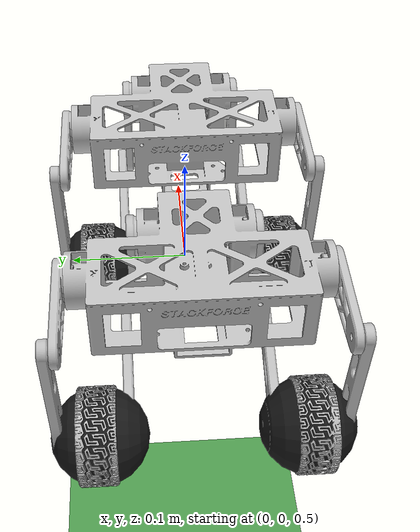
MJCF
<mujoco model="rh1_quadruped">
  <compiler meshdir="meshes/visual" angle="radian"/>
  <option gravity="0 0 -9.81" timestep="0.002"/>
  <default>
    <joint damping="0.1"/>
    <geom contype="1" conaffinity="1" friction="1.0 0.005 0.0001" rgba="0.75 0.75 0.75 1"/>
  </default>

  <asset>
    <mesh name="F_base_link" file="base_link.STL"/>
    <mesh name="R_base_link" file="base_link.STL"/>
    <mesh name="F_Link1" file="Link1.STL"/>
    <mesh name="R_Link1" file="Link1.STL"/>
    <mesh name="F_Link2" file="Link2.STL"/>
    <mesh name="R_Link2" file="Link2.STL"/>
    <mesh name="F_Link4" file="Link4.STL"/>
    <mesh name="R_Link4" file="Link4.STL"/>
    <mesh name="F_Link5" file="Link5.STL"/>
    <mesh name="R_Link5" file="Link5.STL"/>
    <mesh name="F_Link6" file="Link6.STL"/>
    <mesh name="R_Link6" file="Link6.STL"/>
    <mesh name="F_Link7" file="Link7.STL"/>
    <mesh name="R_Link7" file="Link7.STL"/>
    <mesh name="F_Link8" file="Link8.STL"/>
    <mesh name="R_Link8" file="Link8.STL"/>
    <mesh name="F_Link10" file="Link10.STL"/>
    <mesh name="R_Link10" file="Link10.STL"/>
    <mesh name="F_Link11" file="Link11.STL"/>
    <mesh name="R_Link11" file="Link11.STL"/>
    <mesh name="F_Link12" file="Link12.STL"/>
    <mesh name="R_Link12" file="Link12.STL"/>
  </asset>

  <worldbody>
    <light directional="true" pos="0 0 3" dir="0 0 -1"/>
    <geom name="ground" type="plane" size="20 20 0.1" rgba="0.3 0.6 0.3 1"/>

    <body name="F_base_link" pos="0 0 0.5">
      <freejoint name="root"/>
      <!-- 配重：增加正压力使轮子获得足够摩擦力 -->
      <body name="chassis_weight" pos="-0.085 0 0">
        <inertial pos="0 0 0" mass="1.5" fullinertia="0.01 0.01 0.01 0 0 0"/>
      </body>
      <inertial pos="0.01962 0.00042858 0.1275" mass="0.10447" fullinertia="0.00014284 0.00010434 0.00021415 -4.8698e-08 6.5351e-07 -2.1296e-08"/>
      <geom type="mesh" mesh="F_base_link" contype="0" conaffinity="0"/>
      <body name="F_Link1" pos="0.0094733 -0.089437 0.13366" euler="1.5708 0 0">
        <joint name="F_joint1" type="hinge" axis="0 0 1" limited="true" range="-3.14 3.14" damping="0.1"/>
        <inertial pos="-0.018172 7.5943e-07 -0.00024017" mass="0.010538" fullinertia="6.4723e-07 4.7414e-06 5.326e-06 2.2204e-11 -3.9655e-08 -1.4489e-11"/>
        <geom type="mesh" mesh="F_Link1" contype="0" conaffinity="0"/>
        <body name="F_Link2" pos="-0.06 0 0.011076" euler="0 0 0">
          <inertial pos="0.0053781 -0.065346 -0.01087" mass="0.015817" fullinertia="1.6036e-05 1.2182e-06 1.5983e-05 1.2278e-06 -1.264e-08 1.5358e-07"/>
          <geom type="mesh" mesh="F_Link2" contype="0" conaffinity="0"/>
          <body name="F_Link4" pos="0.0082023 -0.099663 -0.028996" euler="0 0 0">
            <joint name="F_joint4" type="hinge" axis="0 0 -1" limited="false" damping="0.001"/>
            <inertial pos="5.8973e-12 7.5797e-11 0.0027038" mass="0.035175" fullinertia="1.5237e-05 1.5237e-05 2.5786e-05 -3.2644e-10 -1.1281e-14 -3.6697e-14"/>
            <geom type="mesh" mesh="F_Link4" contype="0" conaffinity="0"/>
            <geom type="sphere" size="0.034" contype="1" conaffinity="1" rgba="0.1 0.1 0.1 1"/>
          </body>
        </body>
      </body>
      <body name="F_Link5" pos="0.049473 -0.041906 0.13366" euler="1.5708 0 0">
        <joint name="F_joint5" type="hinge" axis="0 0 1" limited="true" range="-3.14 3.14" damping="0.1"/>
        <inertial pos="7.8142e-07 -0.018172 -0.00030928" mass="0.010538" fullinertia="4.7414e-06 6.4723e-07 5.326e-06 3.7331e-13 -1.4896e-11 -3.9651e-08"/>
        <geom type="mesh" mesh="F_Link5" contype="0" conaffinity="0"/>
        <body name="F_Link6" pos="0 -0.06 0.0098958" euler="0 0 0">
          <inertial pos="-0.055906 -0.024155 -0.0031934" mass="0.014489" fullinertia="3.7915e-06 1.5922e-05 1.9476e-05 -6.4435e-06 -4.0459e-07 -1.7481e-07"/>
          <geom type="mesh" mesh="F_Link6" contype="0" conaffinity="0"/>
        </body>
      </body>
      <body name="F_Link7" pos="0.0094718 0.091801 0.13366" euler="-1.5708 0 0">
        <joint name="F_joint7" type="hinge" axis="0 0 1" limited="true" range="-3.14 3.14" damping="0.1"/>
        <inertial pos="-0.018173 3.9048e-07 -0.00012552" mass="0.010538" fullinertia="6.473e-07 4.7414e-06 5.326e-06 -4.2889e-11 -3.9638e-08 -7.4543e-12"/>
        <geom type="mesh" mesh="F_Link7" contype="0" conaffinity="0"/>
        <body name="F_Link8" pos="-0.06 0 0.005271" euler="0 0 0">
          <inertial pos="0.00508369 0.0617689 -0.000965127" mass="0.014324" fullinertia="1.5984e-05 1.16628e-06 1.58968e-05 -1.22785e-06 -1.26402e-08 -1.53583e-07"/>
          <geom type="mesh" mesh="F_Link8" contype="0" conaffinity="0"/>
          <body name="F_Link10" pos="0.0082025 0.099663 -0.025257" euler="0 0 0">
            <joint name="F_joint10" type="hinge" axis="0 0 -1" limited="false" damping="0.001"/>
            <inertial pos="-7.59746e-11 -2.75868e-12 0.00138457" mass="0.0351747" fullinertia="1.52366e-05 1.52375e-05 2.57858e-05 2.33321e-10 3.77431e-14 -7.0322e-15"/>
            <geom type="mesh" mesh="F_Link10" contype="0" conaffinity="0"/>
            <geom type="sphere" size="0.034" contype="1" conaffinity="1" rgba="0.1 0.1 0.1 1"/>
          </body>
        </body>
      </body>
      <body name="F_Link11" pos="0.049472 0.047239 0.13366" euler="-1.5708 0 0">
        <joint name="F_joint11" type="hinge" axis="0 0 1" limited="true" range="-3.14 3.14" damping="0.1"/>
        <inertial pos="-3.90941e-07 0.0181715 -0.00316404" mass="0.0105379" fullinertia="4.74136e-06 6.47301e-07 5.32599e-06 4.28926e-11 7.45038e-12 3.96641e-08"/>
        <geom type="mesh" mesh="F_Link11" contype="0" conaffinity="0"/>
        <body name="F_Link12" pos="0 0.06 0.0035028" euler="0 0 0">
          <inertial pos="-0.0559059 0.0241552 -0.000443282" mass="0.0144894" fullinertia="3.79239e-06 1.59214e-05 1.94758e-05 6.44433e-06 -4.04595e-07 1.74813e-07"/>
          <geom type="mesh" mesh="F_Link12" contype="0" conaffinity="0"/>
        </body>
      </body>

      <body name="R_base_link" pos="-0.17 0 0">
        <inertial pos="0.01962 0.00042858 0.1275" mass="0.10447" fullinertia="0.00014284 0.00010434 0.00021415 -4.8698e-08 6.5351e-07 -2.1296e-08"/>
        <geom type="mesh" mesh="R_base_link" contype="0" conaffinity="0"/>
        <body name="R_Link1" pos="0.0094733 -0.089437 0.13366" euler="1.5708 0 0">
          <joint name="R_joint1" type="hinge" axis="0 0 1" limited="true" range="-3.14 3.14" damping="0.1"/>
          <inertial pos="-0.018172 7.5943e-07 -0.00024017" mass="0.010538" fullinertia="6.4723e-07 4.7414e-06 5.326e-06 2.2204e-11 -3.9655e-08 -1.4489e-11"/>
          <geom type="mesh" mesh="R_Link1" contype="0" conaffinity="0"/>
          <body name="R_Link2" pos="-0.06 0 0.011076" euler="0 0 0">
            <inertial pos="0.0053781 -0.065346 -0.01087" mass="0.015817" fullinertia="1.6036e-05 1.2182e-06 1.5983e-05 1.2278e-06 -1.264e-08 1.5358e-07"/>
            <geom type="mesh" mesh="R_Link2" contype="0" conaffinity="0"/>
            <body name="R_Link4" pos="0.0082023 -0.099663 -0.028996" euler="0 0 0">
              <joint name="R_joint4" type="hinge" axis="0 0 -1" limited="false" damping="0.001"/>
              <inertial pos="5.8973e-12 7.5797e-11 0.0027038" mass="0.035175" fullinertia="1.5237e-05 1.5237e-05 2.5786e-05 -3.2644e-10 -1.1281e-14 -3.6697e-14"/>
              <geom type="mesh" mesh="R_Link4" contype="0" conaffinity="0"/>
              <geom type="sphere" size="0.034" contype="1" conaffinity="1" rgba="0.1 0.1 0.1 1"/>
            </body>
          </body>
        </body>
        <body name="R_Link5" pos="0.049473 -0.041906 0.13366" euler="1.5708 0 0">
          <joint name="R_joint5" type="hinge" axis="0 0 1" limited="true" range="-3.14 3.14" damping="0.1"/>
          <inertial pos="7.8142e-07 -0.018172 -0.00030928" mass="0.010538" fullinertia="4.7414e-06 6.4723e-07 5.326e-06 3.7331e-13 -1.4896e-11 -3.9651e-08"/>
          <geom type="mesh" mesh="R_Link5" contype="0" conaffinity="0"/>
          <body name="R_Link6" pos="0 -0.06 0.0098958" euler="0 0 0">
            <inertial pos="-0.055906 -0.024155 -0.0031934" mass="0.014489" fullinertia="3.7915e-06 1.5922e-05 1.9476e-05 -6.4435e-06 -4.0459e-07 -1.7481e-07"/>
            <geom type="mesh" mesh="R_Link6" contype="0" conaffinity="0"/>
          </body>
        </body>
        <body name="R_Link7" pos="0.0094718 0.091801 0.13366" euler="-1.5708 0 0">
          <joint name="R_joint7" type="hinge" axis="0 0 1" limited="true" range="-3.14 3.14" damping="0.1"/>
          <inertial pos="-0.018173 3.9048e-07 -0.00012552" mass="0.010538" fullinertia="6.473e-07 4.7414e-06 5.326e-06 -4.2889e-11 -3.9638e-08 -7.4543e-12"/>
          <geom type="mesh" mesh="R_Link7" contype="0" conaffinity="0"/>
          <body name="R_Link8" pos="-0.06 0 0.005271" euler="0 0 0">
            <inertial pos="0.00508369 0.0617689 -0.000965127" mass="0.014324" fullinertia="1.5984e-05 1.16628e-06 1.58968e-05 -1.22785e-06 -1.26402e-08 -1.53583e-07"/>
            <geom type="mesh" mesh="R_Link8" contype="0" conaffinity="0"/>
            <body name="R_Link10" pos="0.0082025 0.099663 -0.025257" euler="0 0 0">
              <joint name="R_joint10" type="hinge" axis="0 0 -1" limited="false" damping="0.001"/>
              <inertial pos="-7.59746e-11 -2.75868e-12 0.00138457" mass="0.0351747" fullinertia="1.52366e-05 1.52375e-05 2.57858e-05 2.33321e-10 3.77431e-14 -7.0322e-15"/>
              <geom type="mesh" mesh="R_Link10" contype="0" conaffinity="0"/>
              <geom type="sphere" size="0.034" contype="1" conaffinity="1" rgba="0.1 0.1 0.1 1"/>
            </body>
          </body>
        </body>
        <body name="R_Link11" pos="0.049472 0.047239 0.13366" euler="-1.5708 0 0">
          <joint name="R_joint11" type="hinge" axis="0 0 1" limited="true" range="-3.14 3.14" damping="0.1"/>
          <inertial pos="-3.90941e-07 0.0181715 -0.00316404" mass="0.0105379" fullinertia="4.74136e-06 6.47301e-07 5.32599e-06 4.28926e-11 7.45038e-12 3.96641e-08"/>
          <geom type="mesh" mesh="R_Link11" contype="0" conaffinity="0"/>
          <body name="R_Link12" pos="0 0.06 0.0035028" euler="0 0 0">
            <inertial pos="-0.0559059 0.0241552 -0.000443282" mass="0.0144894" fullinertia="3.79239e-06 1.59214e-05 1.94758e-05 6.44433e-06 -4.04595e-07 1.74813e-07"/>
            <geom type="mesh" mesh="R_Link12" contype="0" conaffinity="0"/>
          </body>
        </body>
      </body>

    </body>
  </worldbody>

  <!-- 5-bar 平行链等式约束：joint5/joint11 跟随主髋关节同角度转动 -->
  <equality>
    <joint joint1="F_joint5"  joint2="F_joint1"  polycoef="0 1 0 0 0"/>
    <joint joint1="F_joint11" joint2="F_joint7"  polycoef="0 1 0 0 0"/>
    <joint joint1="R_joint5"  joint2="R_joint1"  polycoef="0 1 0 0 0"/>
    <joint joint1="R_joint11" joint2="R_joint7"  polycoef="0 1 0 0 0"/>
  </equality>

  <actuator>
    <!-- 髋关节位置伺服 (ctrl[0..3])：Q/E 腿高控制 -->
    <position name="F_hip_L"  joint="F_joint1"  kp="100" ctrlrange="-0.8 0.8"/>
    <position name="F_hip_R"  joint="F_joint7"  kp="100" ctrlrange="-0.8 0.8"/>
    <position name="R_hip_L"  joint="R_joint1"  kp="100" ctrlrange="-0.8 0.8"/>
    <position name="R_hip_R"  joint="R_joint7"  kp="100" ctrlrange="-0.8 0.8"/>
    <!-- 轮子力矩执行器 (ctrl[4..7])：W/S 前进/后退，A/D 转向 -->
    <!-- motor 执行器直接施加力矩，不产生速度反馈的爆炸性制动力 -->
    <motor name="F_wheel_L" joint="F_joint4"  ctrlrange="-0.1 0.1"/>
    <motor name="F_wheel_R" joint="F_joint10" ctrlrange="-0.1 0.1"/>
    <motor name="R_wheel_L" joint="R_joint4"  ctrlrange="-0.1 0.1"/>
    <motor name="R_wheel_R" joint="R_joint10" ctrlrange="-0.1 0.1"/>
  </actuator>
</mujoco>
